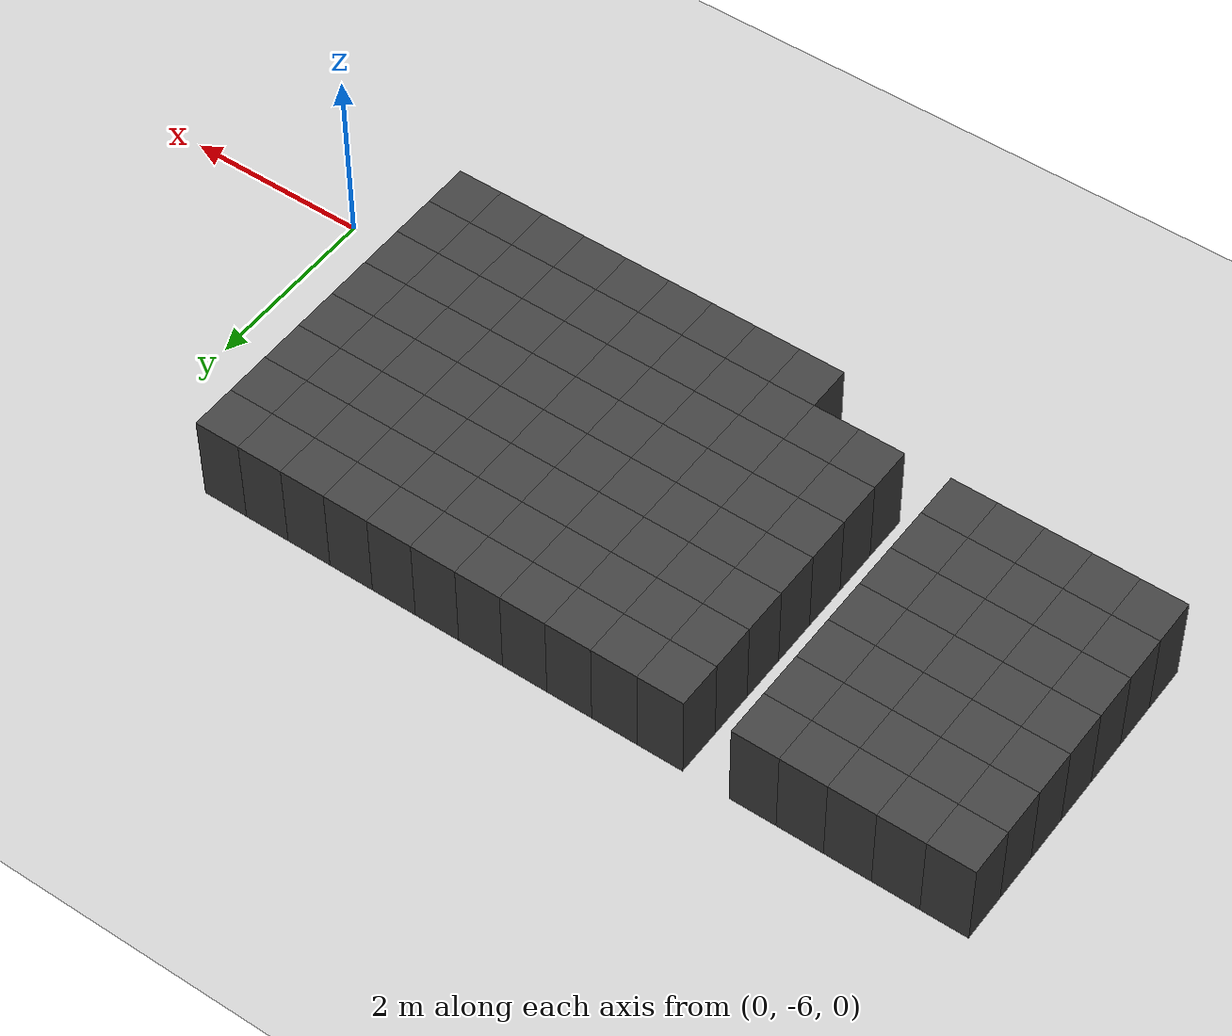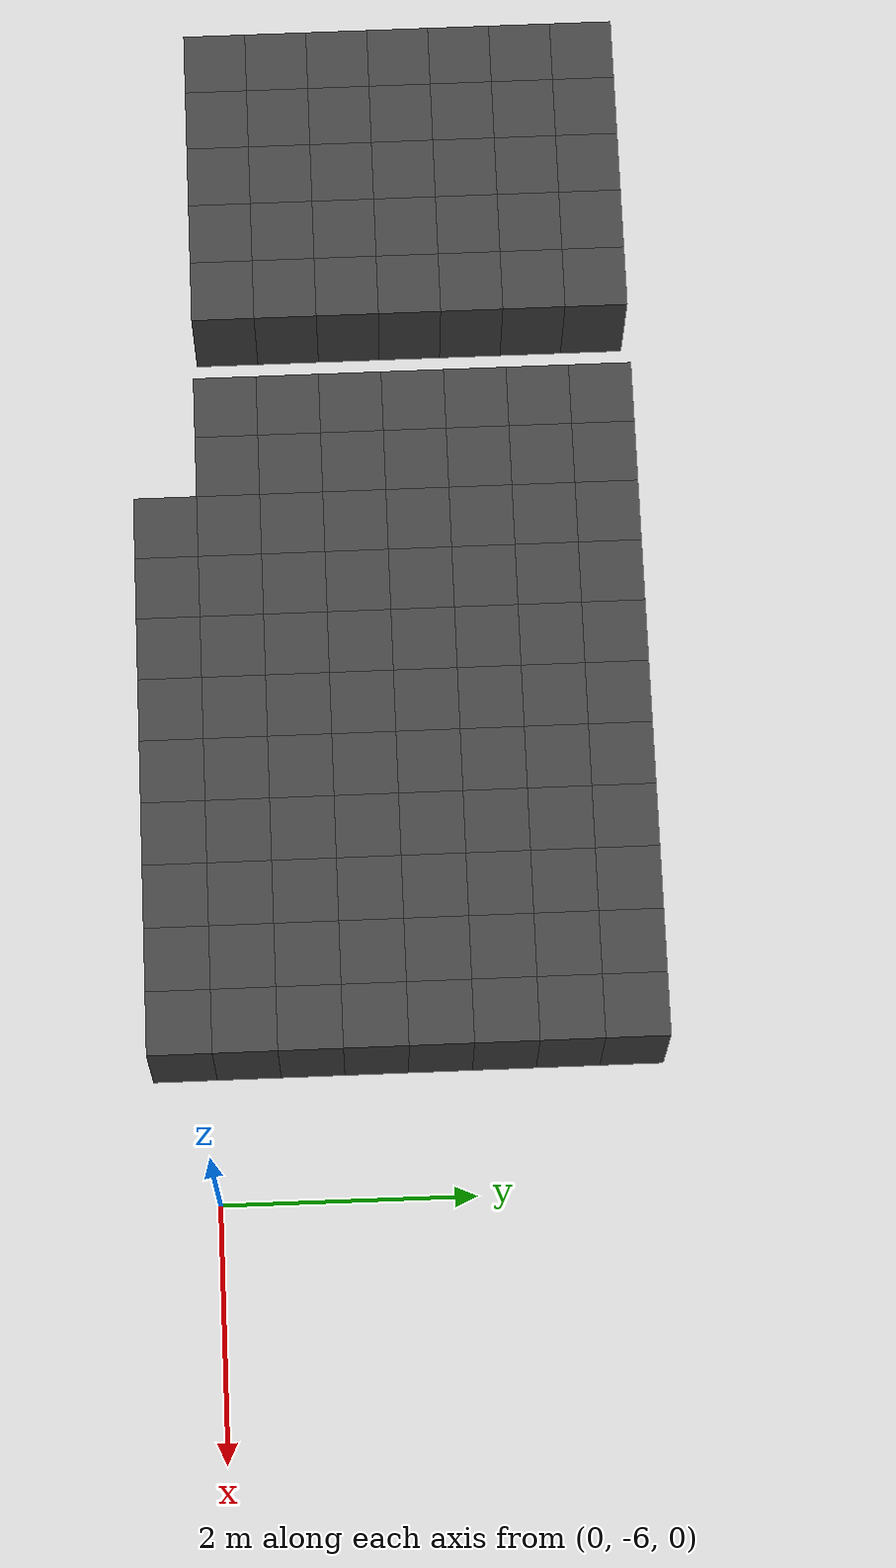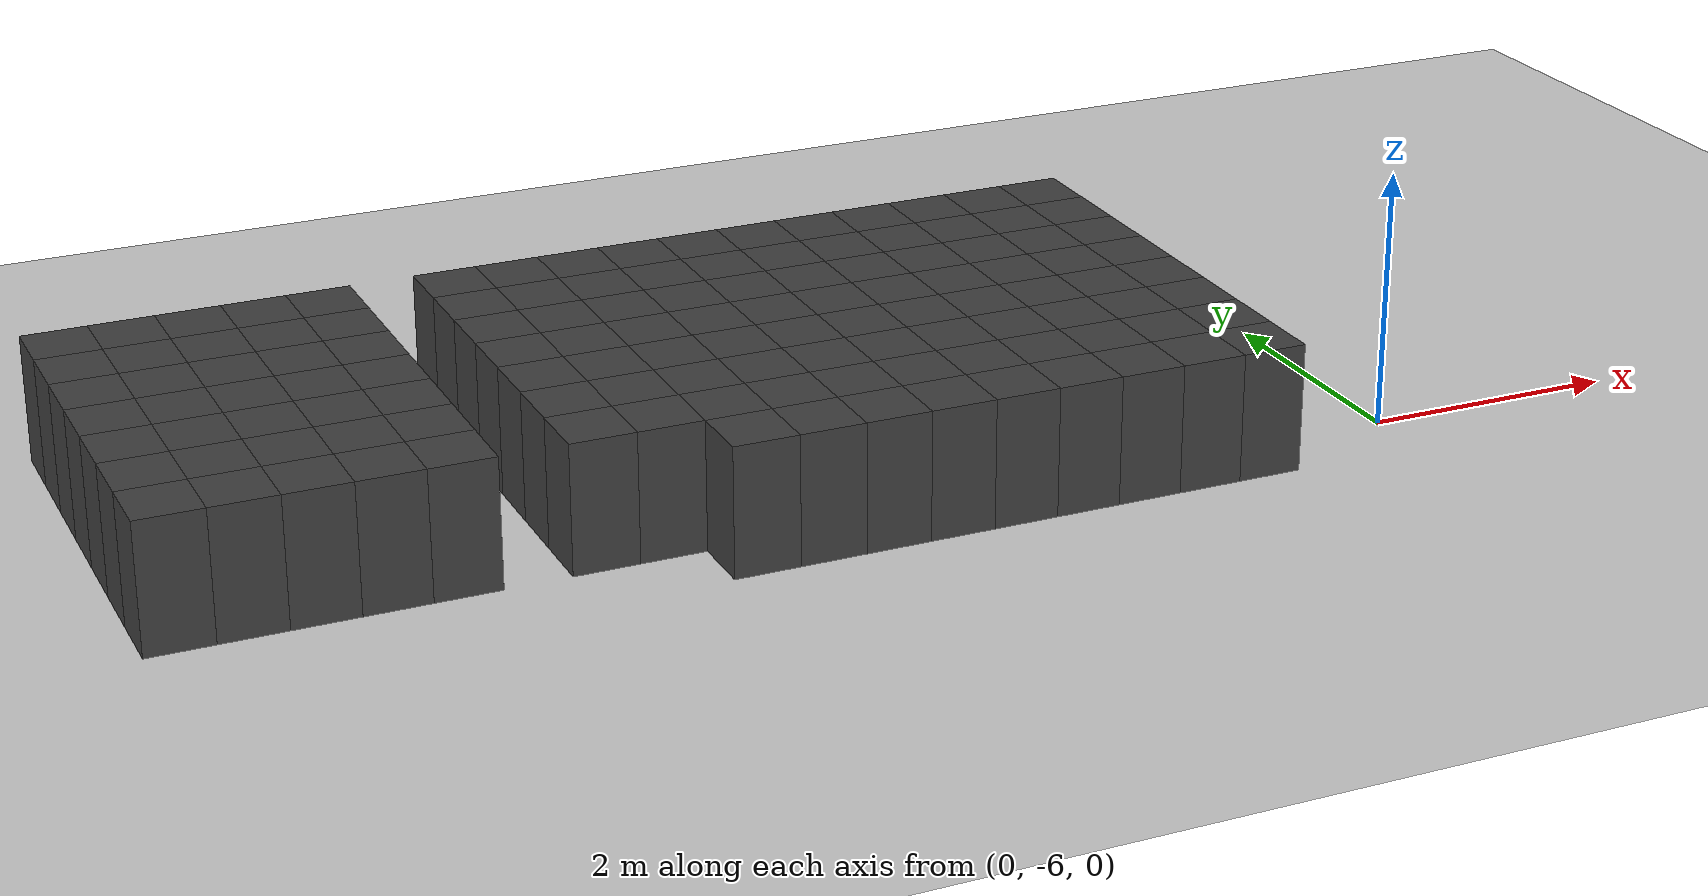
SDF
<sdf version="1.7">
 <world name="map_14706">
  <model name="ground_plane">
   <static>true</static>
   <link name="link">
    <collision name="collision">
     <geometry><plane><normal>0 0 1</normal><size>200 200</size></plane></geometry>
    </collision>
    <visual name="visual">
     <geometry><plane><normal>0 0 1</normal><size>200 200</size></plane></geometry>
     <material><ambient>0.8 0.8 0.8 1</ambient><diffuse>0.8 0.8 0.8 1</diffuse></material>
    </visual>
   </link>
  </model>
  <model name="maze_environment">
   <static>true</static>
   <link name="wall_1031">
    <pose>-9.250 -2.750 0.500 0 0 0</pose>
    <collision name="col"><geometry><box><size>0.5 0.5 1.0</size></box></geometry></collision>
    <visual name="vis">
     <geometry><box><size>0.5 0.5 1.0</size></box></geometry>
     <material><ambient>0.15 0.15 0.15 1</ambient><diffuse>0.25 0.25 0.25 1</diffuse></material>
    </visual>
   </link>
   <link name="wall_1032">
    <pose>-8.750 -2.750 0.500 0 0 0</pose>
    <collision name="col"><geometry><box><size>0.5 0.5 1.0</size></box></geometry></collision>
    <visual name="vis">
     <geometry><box><size>0.5 0.5 1.0</size></box></geometry>
     <material><ambient>0.15 0.15 0.15 1</ambient><diffuse>0.25 0.25 0.25 1</diffuse></material>
    </visual>
   </link>
   <link name="wall_1033">
    <pose>-8.250 -2.750 0.500 0 0 0</pose>
    <collision name="col"><geometry><box><size>0.5 0.5 1.0</size></box></geometry></collision>
    <visual name="vis">
     <geometry><box><size>0.5 0.5 1.0</size></box></geometry>
     <material><ambient>0.15 0.15 0.15 1</ambient><diffuse>0.25 0.25 0.25 1</diffuse></material>
    </visual>
   </link>
   <link name="wall_1034">
    <pose>-7.750 -2.750 0.500 0 0 0</pose>
    <collision name="col"><geometry><box><size>0.5 0.5 1.0</size></box></geometry></collision>
    <visual name="vis">
     <geometry><box><size>0.5 0.5 1.0</size></box></geometry>
     <material><ambient>0.15 0.15 0.15 1</ambient><diffuse>0.25 0.25 0.25 1</diffuse></material>
    </visual>
   </link>
   <link name="wall_1035">
    <pose>-7.250 -2.750 0.500 0 0 0</pose>
    <collision name="col"><geometry><box><size>0.5 0.5 1.0</size></box></geometry></collision>
    <visual name="vis">
     <geometry><box><size>0.5 0.5 1.0</size></box></geometry>
     <material><ambient>0.15 0.15 0.15 1</ambient><diffuse>0.25 0.25 0.25 1</diffuse></material>
    </visual>
   </link>
   <link name="wall_1036">
    <pose>-6.250 -2.750 0.500 0 0 0</pose>
    <collision name="col"><geometry><box><size>0.5 0.5 1.0</size></box></geometry></collision>
    <visual name="vis">
     <geometry><box><size>0.5 0.5 1.0</size></box></geometry>
     <material><ambient>0.15 0.15 0.15 1</ambient><diffuse>0.25 0.25 0.25 1</diffuse></material>
    </visual>
   </link>
   <link name="wall_1037">
    <pose>-5.750 -2.750 0.500 0 0 0</pose>
    <collision name="col"><geometry><box><size>0.5 0.5 1.0</size></box></geometry></collision>
    <visual name="vis">
     <geometry><box><size>0.5 0.5 1.0</size></box></geometry>
     <material><ambient>0.15 0.15 0.15 1</ambient><diffuse>0.25 0.25 0.25 1</diffuse></material>
    </visual>
   </link>
   <link name="wall_1038">
    <pose>-5.250 -2.750 0.500 0 0 0</pose>
    <collision name="col"><geometry><box><size>0.5 0.5 1.0</size></box></geometry></collision>
    <visual name="vis">
     <geometry><box><size>0.5 0.5 1.0</size></box></geometry>
     <material><ambient>0.15 0.15 0.15 1</ambient><diffuse>0.25 0.25 0.25 1</diffuse></material>
    </visual>
   </link>
   <link name="wall_1039">
    <pose>-4.750 -2.750 0.500 0 0 0</pose>
    <collision name="col"><geometry><box><size>0.5 0.5 1.0</size></box></geometry></collision>
    <visual name="vis">
     <geometry><box><size>0.5 0.5 1.0</size></box></geometry>
     <material><ambient>0.15 0.15 0.15 1</ambient><diffuse>0.25 0.25 0.25 1</diffuse></material>
    </visual>
   </link>
   <link name="wall_1040">
    <pose>-4.250 -2.750 0.500 0 0 0</pose>
    <collision name="col"><geometry><box><size>0.5 0.5 1.0</size></box></geometry></collision>
    <visual name="vis">
     <geometry><box><size>0.5 0.5 1.0</size></box></geometry>
     <material><ambient>0.15 0.15 0.15 1</ambient><diffuse>0.25 0.25 0.25 1</diffuse></material>
    </visual>
   </link>
   <link name="wall_1041">
    <pose>-3.750 -2.750 0.500 0 0 0</pose>
    <collision name="col"><geometry><box><size>0.5 0.5 1.0</size></box></geometry></collision>
    <visual name="vis">
     <geometry><box><size>0.5 0.5 1.0</size></box></geometry>
     <material><ambient>0.15 0.15 0.15 1</ambient><diffuse>0.25 0.25 0.25 1</diffuse></material>
    </visual>
   </link>
   <link name="wall_1042">
    <pose>-3.250 -2.750 0.500 0 0 0</pose>
    <collision name="col"><geometry><box><size>0.5 0.5 1.0</size></box></geometry></collision>
    <visual name="vis">
     <geometry><box><size>0.5 0.5 1.0</size></box></geometry>
     <material><ambient>0.15 0.15 0.15 1</ambient><diffuse>0.25 0.25 0.25 1</diffuse></material>
    </visual>
   </link>
   <link name="wall_1043">
    <pose>-2.750 -2.750 0.500 0 0 0</pose>
    <collision name="col"><geometry><box><size>0.5 0.5 1.0</size></box></geometry></collision>
    <visual name="vis">
     <geometry><box><size>0.5 0.5 1.0</size></box></geometry>
     <material><ambient>0.15 0.15 0.15 1</ambient><diffuse>0.25 0.25 0.25 1</diffuse></material>
    </visual>
   </link>
   <link name="wall_1044">
    <pose>-2.250 -2.750 0.500 0 0 0</pose>
    <collision name="col"><geometry><box><size>0.5 0.5 1.0</size></box></geometry></collision>
    <visual name="vis">
     <geometry><box><size>0.5 0.5 1.0</size></box></geometry>
     <material><ambient>0.15 0.15 0.15 1</ambient><diffuse>0.25 0.25 0.25 1</diffuse></material>
    </visual>
   </link>
   <link name="wall_1045">
    <pose>-1.750 -2.750 0.500 0 0 0</pose>
    <collision name="col"><geometry><box><size>0.5 0.5 1.0</size></box></geometry></collision>
    <visual name="vis">
     <geometry><box><size>0.5 0.5 1.0</size></box></geometry>
     <material><ambient>0.15 0.15 0.15 1</ambient><diffuse>0.25 0.25 0.25 1</diffuse></material>
    </visual>
   </link>
   <link name="wall_1046">
    <pose>-1.250 -2.750 0.500 0 0 0</pose>
    <collision name="col"><geometry><box><size>0.5 0.5 1.0</size></box></geometry></collision>
    <visual name="vis">
     <geometry><box><size>0.5 0.5 1.0</size></box></geometry>
     <material><ambient>0.15 0.15 0.15 1</ambient><diffuse>0.25 0.25 0.25 1</diffuse></material>
    </visual>
   </link>
   <link name="wall_1073">
    <pose>-9.250 -3.250 0.500 0 0 0</pose>
    <collision name="col"><geometry><box><size>0.5 0.5 1.0</size></box></geometry></collision>
    <visual name="vis">
     <geometry><box><size>0.5 0.5 1.0</size></box></geometry>
     <material><ambient>0.15 0.15 0.15 1</ambient><diffuse>0.25 0.25 0.25 1</diffuse></material>
    </visual>
   </link>
   <link name="wall_1074">
    <pose>-8.750 -3.250 0.500 0 0 0</pose>
    <collision name="col"><geometry><box><size>0.5 0.5 1.0</size></box></geometry></collision>
    <visual name="vis">
     <geometry><box><size>0.5 0.5 1.0</size></box></geometry>
     <material><ambient>0.15 0.15 0.15 1</ambient><diffuse>0.25 0.25 0.25 1</diffuse></material>
    </visual>
   </link>
   <link name="wall_1075">
    <pose>-8.250 -3.250 0.500 0 0 0</pose>
    <collision name="col"><geometry><box><size>0.5 0.5 1.0</size></box></geometry></collision>
    <visual name="vis">
     <geometry><box><size>0.5 0.5 1.0</size></box></geometry>
     <material><ambient>0.15 0.15 0.15 1</ambient><diffuse>0.25 0.25 0.25 1</diffuse></material>
    </visual>
   </link>
   <link name="wall_1076">
    <pose>-7.750 -3.250 0.500 0 0 0</pose>
    <collision name="col"><geometry><box><size>0.5 0.5 1.0</size></box></geometry></collision>
    <visual name="vis">
     <geometry><box><size>0.5 0.5 1.0</size></box></geometry>
     <material><ambient>0.15 0.15 0.15 1</ambient><diffuse>0.25 0.25 0.25 1</diffuse></material>
    </visual>
   </link>
   <link name="wall_1077">
    <pose>-7.250 -3.250 0.500 0 0 0</pose>
    <collision name="col"><geometry><box><size>0.5 0.5 1.0</size></box></geometry></collision>
    <visual name="vis">
     <geometry><box><size>0.5 0.5 1.0</size></box></geometry>
     <material><ambient>0.15 0.15 0.15 1</ambient><diffuse>0.25 0.25 0.25 1</diffuse></material>
    </visual>
   </link>
   <link name="wall_1078">
    <pose>-6.250 -3.250 0.500 0 0 0</pose>
    <collision name="col"><geometry><box><size>0.5 0.5 1.0</size></box></geometry></collision>
    <visual name="vis">
     <geometry><box><size>0.5 0.5 1.0</size></box></geometry>
     <material><ambient>0.15 0.15 0.15 1</ambient><diffuse>0.25 0.25 0.25 1</diffuse></material>
    </visual>
   </link>
   <link name="wall_1079">
    <pose>-5.750 -3.250 0.500 0 0 0</pose>
    <collision name="col"><geometry><box><size>0.5 0.5 1.0</size></box></geometry></collision>
    <visual name="vis">
     <geometry><box><size>0.5 0.5 1.0</size></box></geometry>
     <material><ambient>0.15 0.15 0.15 1</ambient><diffuse>0.25 0.25 0.25 1</diffuse></material>
    </visual>
   </link>
   <link name="wall_1080">
    <pose>-5.250 -3.250 0.500 0 0 0</pose>
    <collision name="col"><geometry><box><size>0.5 0.5 1.0</size></box></geometry></collision>
    <visual name="vis">
     <geometry><box><size>0.5 0.5 1.0</size></box></geometry>
     <material><ambient>0.15 0.15 0.15 1</ambient><diffuse>0.25 0.25 0.25 1</diffuse></material>
    </visual>
   </link>
   <link name="wall_1081">
    <pose>-4.750 -3.250 0.500 0 0 0</pose>
    <collision name="col"><geometry><box><size>0.5 0.5 1.0</size></box></geometry></collision>
    <visual name="vis">
     <geometry><box><size>0.5 0.5 1.0</size></box></geometry>
     <material><ambient>0.15 0.15 0.15 1</ambient><diffuse>0.25 0.25 0.25 1</diffuse></material>
    </visual>
   </link>
   <link name="wall_1082">
    <pose>-4.250 -3.250 0.500 0 0 0</pose>
    <collision name="col"><geometry><box><size>0.5 0.5 1.0</size></box></geometry></collision>
    <visual name="vis">
     <geometry><box><size>0.5 0.5 1.0</size></box></geometry>
     <material><ambient>0.15 0.15 0.15 1</ambient><diffuse>0.25 0.25 0.25 1</diffuse></material>
    </visual>
   </link>
   <link name="wall_1083">
    <pose>-3.750 -3.250 0.500 0 0 0</pose>
    <collision name="col"><geometry><box><size>0.5 0.5 1.0</size></box></geometry></collision>
    <visual name="vis">
     <geometry><box><size>0.5 0.5 1.0</size></box></geometry>
     <material><ambient>0.15 0.15 0.15 1</ambient><diffuse>0.25 0.25 0.25 1</diffuse></material>
    </visual>
   </link>
   <link name="wall_1084">
    <pose>-3.250 -3.250 0.500 0 0 0</pose>
    <collision name="col"><geometry><box><size>0.5 0.5 1.0</size></box></geometry></collision>
    <visual name="vis">
     <geometry><box><size>0.5 0.5 1.0</size></box></geometry>
     <material><ambient>0.15 0.15 0.15 1</ambient><diffuse>0.25 0.25 0.25 1</diffuse></material>
    </visual>
   </link>
   <link name="wall_1085">
    <pose>-2.750 -3.250 0.500 0 0 0</pose>
    <collision name="col"><geometry><box><size>0.5 0.5 1.0</size></box></geometry></collision>
    <visual name="vis">
     <geometry><box><size>0.5 0.5 1.0</size></box></geometry>
     <material><ambient>0.15 0.15 0.15 1</ambient><diffuse>0.25 0.25 0.25 1</diffuse></material>
    </visual>
   </link>
   <link name="wall_1086">
    <pose>-2.250 -3.250 0.500 0 0 0</pose>
    <collision name="col"><geometry><box><size>0.5 0.5 1.0</size></box></geometry></collision>
    <visual name="vis">
     <geometry><box><size>0.5 0.5 1.0</size></box></geometry>
     <material><ambient>0.15 0.15 0.15 1</ambient><diffuse>0.25 0.25 0.25 1</diffuse></material>
    </visual>
   </link>
   <link name="wall_1087">
    <pose>-1.750 -3.250 0.500 0 0 0</pose>
    <collision name="col"><geometry><box><size>0.5 0.5 1.0</size></box></geometry></collision>
    <visual name="vis">
     <geometry><box><size>0.5 0.5 1.0</size></box></geometry>
     <material><ambient>0.15 0.15 0.15 1</ambient><diffuse>0.25 0.25 0.25 1</diffuse></material>
    </visual>
   </link>
   <link name="wall_1088">
    <pose>-1.250 -3.250 0.500 0 0 0</pose>
    <collision name="col"><geometry><box><size>0.5 0.5 1.0</size></box></geometry></collision>
    <visual name="vis">
     <geometry><box><size>0.5 0.5 1.0</size></box></geometry>
     <material><ambient>0.15 0.15 0.15 1</ambient><diffuse>0.25 0.25 0.25 1</diffuse></material>
    </visual>
   </link>
   <link name="wall_1116">
    <pose>-9.250 -3.750 0.500 0 0 0</pose>
    <collision name="col"><geometry><box><size>0.5 0.5 1.0</size></box></geometry></collision>
    <visual name="vis">
     <geometry><box><size>0.5 0.5 1.0</size></box></geometry>
     <material><ambient>0.15 0.15 0.15 1</ambient><diffuse>0.25 0.25 0.25 1</diffuse></material>
    </visual>
   </link>
   <link name="wall_1117">
    <pose>-8.750 -3.750 0.500 0 0 0</pose>
    <collision name="col"><geometry><box><size>0.5 0.5 1.0</size></box></geometry></collision>
    <visual name="vis">
     <geometry><box><size>0.5 0.5 1.0</size></box></geometry>
     <material><ambient>0.15 0.15 0.15 1</ambient><diffuse>0.25 0.25 0.25 1</diffuse></material>
    </visual>
   </link>
   <link name="wall_1118">
    <pose>-8.250 -3.750 0.500 0 0 0</pose>
    <collision name="col"><geometry><box><size>0.5 0.5 1.0</size></box></geometry></collision>
    <visual name="vis">
     <geometry><box><size>0.5 0.5 1.0</size></box></geometry>
     <material><ambient>0.15 0.15 0.15 1</ambient><diffuse>0.25 0.25 0.25 1</diffuse></material>
    </visual>
   </link>
   <link name="wall_1119">
    <pose>-7.750 -3.750 0.500 0 0 0</pose>
    <collision name="col"><geometry><box><size>0.5 0.5 1.0</size></box></geometry></collision>
    <visual name="vis">
     <geometry><box><size>0.5 0.5 1.0</size></box></geometry>
     <material><ambient>0.15 0.15 0.15 1</ambient><diffuse>0.25 0.25 0.25 1</diffuse></material>
    </visual>
   </link>
   <link name="wall_1120">
    <pose>-7.250 -3.750 0.500 0 0 0</pose>
    <collision name="col"><geometry><box><size>0.5 0.5 1.0</size></box></geometry></collision>
    <visual name="vis">
     <geometry><box><size>0.5 0.5 1.0</size></box></geometry>
     <material><ambient>0.15 0.15 0.15 1</ambient><diffuse>0.25 0.25 0.25 1</diffuse></material>
    </visual>
   </link>
   <link name="wall_1121">
    <pose>-6.250 -3.750 0.500 0 0 0</pose>
    <collision name="col"><geometry><box><size>0.5 0.5 1.0</size></box></geometry></collision>
    <visual name="vis">
     <geometry><box><size>0.5 0.5 1.0</size></box></geometry>
     <material><ambient>0.15 0.15 0.15 1</ambient><diffuse>0.25 0.25 0.25 1</diffuse></material>
    </visual>
   </link>
   <link name="wall_1122">
    <pose>-5.750 -3.750 0.500 0 0 0</pose>
    <collision name="col"><geometry><box><size>0.5 0.5 1.0</size></box></geometry></collision>
    <visual name="vis">
     <geometry><box><size>0.5 0.5 1.0</size></box></geometry>
     <material><ambient>0.15 0.15 0.15 1</ambient><diffuse>0.25 0.25 0.25 1</diffuse></material>
    </visual>
   </link>
   <link name="wall_1123">
    <pose>-5.250 -3.750 0.500 0 0 0</pose>
    <collision name="col"><geometry><box><size>0.5 0.5 1.0</size></box></geometry></collision>
    <visual name="vis">
     <geometry><box><size>0.5 0.5 1.0</size></box></geometry>
     <material><ambient>0.15 0.15 0.15 1</ambient><diffuse>0.25 0.25 0.25 1</diffuse></material>
    </visual>
   </link>
   <link name="wall_1124">
    <pose>-4.750 -3.750 0.500 0 0 0</pose>
    <collision name="col"><geometry><box><size>0.5 0.5 1.0</size></box></geometry></collision>
    <visual name="vis">
     <geometry><box><size>0.5 0.5 1.0</size></box></geometry>
     <material><ambient>0.15 0.15 0.15 1</ambient><diffuse>0.25 0.25 0.25 1</diffuse></material>
    </visual>
   </link>
   <link name="wall_1125">
    <pose>-4.250 -3.750 0.500 0 0 0</pose>
    <collision name="col"><geometry><box><size>0.5 0.5 1.0</size></box></geometry></collision>
    <visual name="vis">
     <geometry><box><size>0.5 0.5 1.0</size></box></geometry>
     <material><ambient>0.15 0.15 0.15 1</ambient><diffuse>0.25 0.25 0.25 1</diffuse></material>
    </visual>
   </link>
   <link name="wall_1126">
    <pose>-3.750 -3.750 0.500 0 0 0</pose>
    <collision name="col"><geometry><box><size>0.5 0.5 1.0</size></box></geometry></collision>
    <visual name="vis">
     <geometry><box><size>0.5 0.5 1.0</size></box></geometry>
     <material><ambient>0.15 0.15 0.15 1</ambient><diffuse>0.25 0.25 0.25 1</diffuse></material>
    </visual>
   </link>
   <link name="wall_1127">
    <pose>-3.250 -3.750 0.500 0 0 0</pose>
    <collision name="col"><geometry><box><size>0.5 0.5 1.0</size></box></geometry></collision>
    <visual name="vis">
     <geometry><box><size>0.5 0.5 1.0</size></box></geometry>
     <material><ambient>0.15 0.15 0.15 1</ambient><diffuse>0.25 0.25 0.25 1</diffuse></material>
    </visual>
   </link>
   <link name="wall_1128">
    <pose>-2.750 -3.750 0.500 0 0 0</pose>
    <collision name="col"><geometry><box><size>0.5 0.5 1.0</size></box></geometry></collision>
    <visual name="vis">
     <geometry><box><size>0.5 0.5 1.0</size></box></geometry>
     <material><ambient>0.15 0.15 0.15 1</ambient><diffuse>0.25 0.25 0.25 1</diffuse></material>
    </visual>
   </link>
   <link name="wall_1129">
    <pose>-2.250 -3.750 0.500 0 0 0</pose>
    <collision name="col"><geometry><box><size>0.5 0.5 1.0</size></box></geometry></collision>
    <visual name="vis">
     <geometry><box><size>0.5 0.5 1.0</size></box></geometry>
     <material><ambient>0.15 0.15 0.15 1</ambient><diffuse>0.25 0.25 0.25 1</diffuse></material>
    </visual>
   </link>
   <link name="wall_1130">
    <pose>-1.750 -3.750 0.500 0 0 0</pose>
    <collision name="col"><geometry><box><size>0.5 0.5 1.0</size></box></geometry></collision>
    <visual name="vis">
     <geometry><box><size>0.5 0.5 1.0</size></box></geometry>
     <material><ambient>0.15 0.15 0.15 1</ambient><diffuse>0.25 0.25 0.25 1</diffuse></material>
    </visual>
   </link>
   <link name="wall_1131">
    <pose>-1.250 -3.750 0.500 0 0 0</pose>
    <collision name="col"><geometry><box><size>0.5 0.5 1.0</size></box></geometry></collision>
    <visual name="vis">
     <geometry><box><size>0.5 0.5 1.0</size></box></geometry>
     <material><ambient>0.15 0.15 0.15 1</ambient><diffuse>0.25 0.25 0.25 1</diffuse></material>
    </visual>
   </link>
   <link name="wall_1159">
    <pose>-9.250 -4.250 0.500 0 0 0</pose>
    <collision name="col"><geometry><box><size>0.5 0.5 1.0</size></box></geometry></collision>
    <visual name="vis">
     <geometry><box><size>0.5 0.5 1.0</size></box></geometry>
     <material><ambient>0.15 0.15 0.15 1</ambient><diffuse>0.25 0.25 0.25 1</diffuse></material>
    </visual>
   </link>
   <link name="wall_1160">
    <pose>-8.750 -4.250 0.500 0 0 0</pose>
    <collision name="col"><geometry><box><size>0.5 0.5 1.0</size></box></geometry></collision>
    <visual name="vis">
     <geometry><box><size>0.5 0.5 1.0</size></box></geometry>
     <material><ambient>0.15 0.15 0.15 1</ambient><diffuse>0.25 0.25 0.25 1</diffuse></material>
    </visual>
   </link>
   <link name="wall_1161">
    <pose>-8.250 -4.250 0.500 0 0 0</pose>
    <collision name="col"><geometry><box><size>0.5 0.5 1.0</size></box></geometry></collision>
    <visual name="vis">
     <geometry><box><size>0.5 0.5 1.0</size></box></geometry>
     <material><ambient>0.15 0.15 0.15 1</ambient><diffuse>0.25 0.25 0.25 1</diffuse></material>
    </visual>
   </link>
   <link name="wall_1162">
    <pose>-7.750 -4.250 0.500 0 0 0</pose>
    <collision name="col"><geometry><box><size>0.5 0.5 1.0</size></box></geometry></collision>
    <visual name="vis">
     <geometry><box><size>0.5 0.5 1.0</size></box></geometry>
     <material><ambient>0.15 0.15 0.15 1</ambient><diffuse>0.25 0.25 0.25 1</diffuse></material>
    </visual>
   </link>
   <link name="wall_1163">
    <pose>-7.250 -4.250 0.500 0 0 0</pose>
    <collision name="col"><geometry><box><size>0.5 0.5 1.0</size></box></geometry></collision>
    <visual name="vis">
     <geometry><box><size>0.5 0.5 1.0</size></box></geometry>
     <material><ambient>0.15 0.15 0.15 1</ambient><diffuse>0.25 0.25 0.25 1</diffuse></material>
    </visual>
   </link>
   <link name="wall_1164">
    <pose>-6.250 -4.250 0.500 0 0 0</pose>
    <collision name="col"><geometry><box><size>0.5 0.5 1.0</size></box></geometry></collision>
    <visual name="vis">
     <geometry><box><size>0.5 0.5 1.0</size></box></geometry>
     <material><ambient>0.15 0.15 0.15 1</ambient><diffuse>0.25 0.25 0.25 1</diffuse></material>
    </visual>
   </link>
   <link name="wall_1165">
    <pose>-5.750 -4.250 0.500 0 0 0</pose>
    <collision name="col"><geometry><box><size>0.5 0.5 1.0</size></box></geometry></collision>
    <visual name="vis">
     <geometry><box><size>0.5 0.5 1.0</size></box></geometry>
     <material><ambient>0.15 0.15 0.15 1</ambient><diffuse>0.25 0.25 0.25 1</diffuse></material>
    </visual>
   </link>
   <link name="wall_1166">
    <pose>-5.250 -4.250 0.500 0 0 0</pose>
    <collision name="col"><geometry><box><size>0.5 0.5 1.0</size></box></geometry></collision>
    <visual name="vis">
     <geometry><box><size>0.5 0.5 1.0</size></box></geometry>
     <material><ambient>0.15 0.15 0.15 1</ambient><diffuse>0.25 0.25 0.25 1</diffuse></material>
    </visual>
   </link>
   <link name="wall_1167">
    <pose>-4.750 -4.250 0.500 0 0 0</pose>
    <collision name="col"><geometry><box><size>0.5 0.5 1.0</size></box></geometry></collision>
    <visual name="vis">
     <geometry><box><size>0.5 0.5 1.0</size></box></geometry>
     <material><ambient>0.15 0.15 0.15 1</ambient><diffuse>0.25 0.25 0.25 1</diffuse></material>
    </visual>
   </link>
   <link name="wall_1168">
    <pose>-4.250 -4.250 0.500 0 0 0</pose>
    <collision name="col"><geometry><box><size>0.5 0.5 1.0</size></box></geometry></collision>
    <visual name="vis">
     <geometry><box><size>0.5 0.5 1.0</size></box></geometry>
     <material><ambient>0.15 0.15 0.15 1</ambient><diffuse>0.25 0.25 0.25 1</diffuse></material>
    </visual>
   </link>
   <link name="wall_1169">
    <pose>-3.750 -4.250 0.500 0 0 0</pose>
    <collision name="col"><geometry><box><size>0.5 0.5 1.0</size></box></geometry></collision>
    <visual name="vis">
     <geometry><box><size>0.5 0.5 1.0</size></box></geometry>
     <material><ambient>0.15 0.15 0.15 1</ambient><diffuse>0.25 0.25 0.25 1</diffuse></material>
    </visual>
   </link>
   <link name="wall_1170">
    <pose>-3.250 -4.250 0.500 0 0 0</pose>
    <collision name="col"><geometry><box><size>0.5 0.5 1.0</size></box></geometry></collision>
    <visual name="vis">
     <geometry><box><size>0.5 0.5 1.0</size></box></geometry>
     <material><ambient>0.15 0.15 0.15 1</ambient><diffuse>0.25 0.25 0.25 1</diffuse></material>
    </visual>
   </link>
   <link name="wall_1171">
    <pose>-2.750 -4.250 0.500 0 0 0</pose>
    <collision name="col"><geometry><box><size>0.5 0.5 1.0</size></box></geometry></collision>
    <visual name="vis">
     <geometry><box><size>0.5 0.5 1.0</size></box></geometry>
     <material><ambient>0.15 0.15 0.15 1</ambient><diffuse>0.25 0.25 0.25 1</diffuse></material>
    </visual>
   </link>
   <link name="wall_1172">
    <pose>-2.250 -4.250 0.500 0 0 0</pose>
    <collision name="col"><geometry><box><size>0.5 0.5 1.0</size></box></geometry></collision>
    <visual name="vis">
     <geometry><box><size>0.5 0.5 1.0</size></box></geometry>
     <material><ambient>0.15 0.15 0.15 1</ambient><diffuse>0.25 0.25 0.25 1</diffuse></material>
    </visual>
   </link>
   <link name="wall_1173">
    <pose>-1.750 -4.250 0.500 0 0 0</pose>
    <collision name="col"><geometry><box><size>0.5 0.5 1.0</size></box></geometry></collision>
    <visual name="vis">
     <geometry><box><size>0.5 0.5 1.0</size></box></geometry>
     <material><ambient>0.15 0.15 0.15 1</ambient><diffuse>0.25 0.25 0.25 1</diffuse></material>
    </visual>
   </link>
   <link name="wall_1174">
    <pose>-1.250 -4.250 0.500 0 0 0</pose>
    <collision name="col"><geometry><box><size>0.5 0.5 1.0</size></box></geometry></collision>
    <visual name="vis">
     <geometry><box><size>0.5 0.5 1.0</size></box></geometry>
     <material><ambient>0.15 0.15 0.15 1</ambient><diffuse>0.25 0.25 0.25 1</diffuse></material>
    </visual>
   </link>
   <link name="wall_1202">
    <pose>-9.250 -4.750 0.500 0 0 0</pose>
    <collision name="col"><geometry><box><size>0.5 0.5 1.0</size></box></geometry></collision>
    <visual name="vis">
     <geometry><box><size>0.5 0.5 1.0</size></box></geometry>
     <material><ambient>0.15 0.15 0.15 1</ambient><diffuse>0.25 0.25 0.25 1</diffuse></material>
    </visual>
   </link>
   <link name="wall_1203">
    <pose>-8.750 -4.750 0.500 0 0 0</pose>
    <collision name="col"><geometry><box><size>0.5 0.5 1.0</size></box></geometry></collision>
    <visual name="vis">
     <geometry><box><size>0.5 0.5 1.0</size></box></geometry>
     <material><ambient>0.15 0.15 0.15 1</ambient><diffuse>0.25 0.25 0.25 1</diffuse></material>
    </visual>
   </link>
   <link name="wall_1204">
    <pose>-8.250 -4.750 0.500 0 0 0</pose>
    <collision name="col"><geometry><box><size>0.5 0.5 1.0</size></box></geometry></collision>
    <visual name="vis">
     <geometry><box><size>0.5 0.5 1.0</size></box></geometry>
     <material><ambient>0.15 0.15 0.15 1</ambient><diffuse>0.25 0.25 0.25 1</diffuse></material>
    </visual>
   </link>
   <link name="wall_1205">
    <pose>-7.750 -4.750 0.500 0 0 0</pose>
    <collision name="col"><geometry><box><size>0.5 0.5 1.0</size></box></geometry></collision>
    <visual name="vis">
     <geometry><box><size>0.5 0.5 1.0</size></box></geometry>
     <material><ambient>0.15 0.15 0.15 1</ambient><diffuse>0.25 0.25 0.25 1</diffuse></material>
    </visual>
   </link>
   <link name="wall_1206">
    <pose>-7.250 -4.750 0.500 0 0 0</pose>
    <collision name="col"><geometry><box><size>0.5 0.5 1.0</size></box></geometry></collision>
    <visual name="vis">
     <geometry><box><size>0.5 0.5 1.0</size></box></geometry>
     <material><ambient>0.15 0.15 0.15 1</ambient><diffuse>0.25 0.25 0.25 1</diffuse></material>
    </visual>
   </link>
   <link name="wall_1207">
    <pose>-6.250 -4.750 0.500 0 0 0</pose>
    <collision name="col"><geometry><box><size>0.5 0.5 1.0</size></box></geometry></collision>
    <visual name="vis">
     <geometry><box><size>0.5 0.5 1.0</size></box></geometry>
     <material><ambient>0.15 0.15 0.15 1</ambient><diffuse>0.25 0.25 0.25 1</diffuse></material>
    </visual>
   </link>
   <link name="wall_1208">
    <pose>-5.750 -4.750 0.500 0 0 0</pose>
    <collision name="col"><geometry><box><size>0.5 0.5 1.0</size></box></geometry></collision>
    <visual name="vis">
     <geometry><box><size>0.5 0.5 1.0</size></box></geometry>
     <material><ambient>0.15 0.15 0.15 1</ambient><diffuse>0.25 0.25 0.25 1</diffuse></material>
    </visual>
   </link>
   <link name="wall_1209">
    <pose>-5.250 -4.750 0.500 0 0 0</pose>
    <collision name="col"><geometry><box><size>0.5 0.5 1.0</size></box></geometry></collision>
    <visual name="vis">
     <geometry><box><size>0.5 0.5 1.0</size></box></geometry>
     <material><ambient>0.15 0.15 0.15 1</ambient><diffuse>0.25 0.25 0.25 1</diffuse></material>
    </visual>
   </link>
   <link name="wall_1210">
    <pose>-4.750 -4.750 0.500 0 0 0</pose>
    <collision name="col"><geometry><box><size>0.5 0.5 1.0</size></box></geometry></collision>
    <visual name="vis">
     <geometry><box><size>0.5 0.5 1.0</size></box></geometry>
     <material><ambient>0.15 0.15 0.15 1</ambient><diffuse>0.25 0.25 0.25 1</diffuse></material>
    </visual>
   </link>
   <link name="wall_1211">
    <pose>-4.250 -4.750 0.500 0 0 0</pose>
    <collision name="col"><geometry><box><size>0.5 0.5 1.0</size></box></geometry></collision>
    <visual name="vis">
     <geometry><box><size>0.5 0.5 1.0</size></box></geometry>
     <material><ambient>0.15 0.15 0.15 1</ambient><diffuse>0.25 0.25 0.25 1</diffuse></material>
    </visual>
   </link>
   <link name="wall_1212">
    <pose>-3.750 -4.750 0.500 0 0 0</pose>
    <collision name="col"><geometry><box><size>0.5 0.5 1.0</size></box></geometry></collision>
    <visual name="vis">
     <geometry><box><size>0.5 0.5 1.0</size></box></geometry>
     <material><ambient>0.15 0.15 0.15 1</ambient><diffuse>0.25 0.25 0.25 1</diffuse></material>
    </visual>
   </link>
   <link name="wall_1213">
    <pose>-3.250 -4.750 0.500 0 0 0</pose>
    <collision name="col"><geometry><box><size>0.5 0.5 1.0</size></box></geometry></collision>
    <visual name="vis">
     <geometry><box><size>0.5 0.5 1.0</size></box></geometry>
     <material><ambient>0.15 0.15 0.15 1</ambient><diffuse>0.25 0.25 0.25 1</diffuse></material>
    </visual>
   </link>
   <link name="wall_1214">
    <pose>-2.750 -4.750 0.500 0 0 0</pose>
    <collision name="col"><geometry><box><size>0.5 0.5 1.0</size></box></geometry></collision>
    <visual name="vis">
     <geometry><box><size>0.5 0.5 1.0</size></box></geometry>
     <material><ambient>0.15 0.15 0.15 1</ambient><diffuse>0.25 0.25 0.25 1</diffuse></material>
    </visual>
   </link>
   <link name="wall_1215">
    <pose>-2.250 -4.750 0.500 0 0 0</pose>
    <collision name="col"><geometry><box><size>0.5 0.5 1.0</size></box></geometry></collision>
    <visual name="vis">
     <geometry><box><size>0.5 0.5 1.0</size></box></geometry>
     <material><ambient>0.15 0.15 0.15 1</ambient><diffuse>0.25 0.25 0.25 1</diffuse></material>
    </visual>
   </link>
   <link name="wall_1216">
    <pose>-1.750 -4.750 0.500 0 0 0</pose>
    <collision name="col"><geometry><box><size>0.5 0.5 1.0</size></box></geometry></collision>
    <visual name="vis">
     <geometry><box><size>0.5 0.5 1.0</size></box></geometry>
     <material><ambient>0.15 0.15 0.15 1</ambient><diffuse>0.25 0.25 0.25 1</diffuse></material>
    </visual>
   </link>
   <link name="wall_1217">
    <pose>-1.250 -4.750 0.500 0 0 0</pose>
    <collision name="col"><geometry><box><size>0.5 0.5 1.0</size></box></geometry></collision>
    <visual name="vis">
     <geometry><box><size>0.5 0.5 1.0</size></box></geometry>
     <material><ambient>0.15 0.15 0.15 1</ambient><diffuse>0.25 0.25 0.25 1</diffuse></material>
    </visual>
   </link>
   <link name="wall_1238">
    <pose>-9.250 -5.250 0.500 0 0 0</pose>
    <collision name="col"><geometry><box><size>0.5 0.5 1.0</size></box></geometry></collision>
    <visual name="vis">
     <geometry><box><size>0.5 0.5 1.0</size></box></geometry>
     <material><ambient>0.15 0.15 0.15 1</ambient><diffuse>0.25 0.25 0.25 1</diffuse></material>
    </visual>
   </link>
   <link name="wall_1239">
    <pose>-8.750 -5.250 0.500 0 0 0</pose>
    <collision name="col"><geometry><box><size>0.5 0.5 1.0</size></box></geometry></collision>
    <visual name="vis">
     <geometry><box><size>0.5 0.5 1.0</size></box></geometry>
     <material><ambient>0.15 0.15 0.15 1</ambient><diffuse>0.25 0.25 0.25 1</diffuse></material>
    </visual>
   </link>
   <link name="wall_1240">
    <pose>-8.250 -5.250 0.500 0 0 0</pose>
    <collision name="col"><geometry><box><size>0.5 0.5 1.0</size></box></geometry></collision>
    <visual name="vis">
     <geometry><box><size>0.5 0.5 1.0</size></box></geometry>
     <material><ambient>0.15 0.15 0.15 1</ambient><diffuse>0.25 0.25 0.25 1</diffuse></material>
    </visual>
   </link>
   <link name="wall_1241">
    <pose>-7.750 -5.250 0.500 0 0 0</pose>
    <collision name="col"><geometry><box><size>0.5 0.5 1.0</size></box></geometry></collision>
    <visual name="vis">
     <geometry><box><size>0.5 0.5 1.0</size></box></geometry>
     <material><ambient>0.15 0.15 0.15 1</ambient><diffuse>0.25 0.25 0.25 1</diffuse></material>
    </visual>
   </link>
   <link name="wall_1242">
    <pose>-7.250 -5.250 0.500 0 0 0</pose>
    <collision name="col"><geometry><box><size>0.5 0.5 1.0</size></box></geometry></collision>
    <visual name="vis">
     <geometry><box><size>0.5 0.5 1.0</size></box></geometry>
     <material><ambient>0.15 0.15 0.15 1</ambient><diffuse>0.25 0.25 0.25 1</diffuse></material>
    </visual>
   </link>
   <link name="wall_1243">
    <pose>-6.250 -5.250 0.500 0 0 0</pose>
    <collision name="col"><geometry><box><size>0.5 0.5 1.0</size></box></geometry></collision>
    <visual name="vis">
     <geometry><box><size>0.5 0.5 1.0</size></box></geometry>
     <material><ambient>0.15 0.15 0.15 1</ambient><diffuse>0.25 0.25 0.25 1</diffuse></material>
    </visual>
   </link>
   <link name="wall_1244">
    <pose>-5.750 -5.250 0.500 0 0 0</pose>
    <collision name="col"><geometry><box><size>0.5 0.5 1.0</size></box></geometry></collision>
    <visual name="vis">
     <geometry><box><size>0.5 0.5 1.0</size></box></geometry>
     <material><ambient>0.15 0.15 0.15 1</ambient><diffuse>0.25 0.25 0.25 1</diffuse></material>
    </visual>
   </link>
   <link name="wall_1245">
    <pose>-5.250 -5.250 0.500 0 0 0</pose>
    <collision name="col"><geometry><box><size>0.5 0.5 1.0</size></box></geometry></collision>
    <visual name="vis">
     <geometry><box><size>0.5 0.5 1.0</size></box></geometry>
     <material><ambient>0.15 0.15 0.15 1</ambient><diffuse>0.25 0.25 0.25 1</diffuse></material>
    </visual>
   </link>
   <link name="wall_1246">
    <pose>-4.750 -5.250 0.500 0 0 0</pose>
    <collision name="col"><geometry><box><size>0.5 0.5 1.0</size></box></geometry></collision>
    <visual name="vis">
     <geometry><box><size>0.5 0.5 1.0</size></box></geometry>
     <material><ambient>0.15 0.15 0.15 1</ambient><diffuse>0.25 0.25 0.25 1</diffuse></material>
    </visual>
   </link>
   <link name="wall_1247">
    <pose>-4.250 -5.250 0.500 0 0 0</pose>
    <collision name="col"><geometry><box><size>0.5 0.5 1.0</size></box></geometry></collision>
    <visual name="vis">
     <geometry><box><size>0.5 0.5 1.0</size></box></geometry>
     <material><ambient>0.15 0.15 0.15 1</ambient><diffuse>0.25 0.25 0.25 1</diffuse></material>
    </visual>
   </link>
   <link name="wall_1248">
    <pose>-3.750 -5.250 0.500 0 0 0</pose>
    <collision name="col"><geometry><box><size>0.5 0.5 1.0</size></box></geometry></collision>
    <visual name="vis">
     <geometry><box><size>0.5 0.5 1.0</size></box></geometry>
     <material><ambient>0.15 0.15 0.15 1</ambient><diffuse>0.25 0.25 0.25 1</diffuse></material>
    </visual>
   </link>
   <link name="wall_1249">
    <pose>-3.250 -5.250 0.500 0 0 0</pose>
    <collision name="col"><geometry><box><size>0.5 0.5 1.0</size></box></geometry></collision>
    <visual name="vis">
     <geometry><box><size>0.5 0.5 1.0</size></box></geometry>
     <material><ambient>0.15 0.15 0.15 1</ambient><diffuse>0.25 0.25 0.25 1</diffuse></material>
    </visual>
   </link>
   <link name="wall_1250">
    <pose>-2.750 -5.250 0.500 0 0 0</pose>
    <collision name="col"><geometry><box><size>0.5 0.5 1.0</size></box></geometry></collision>
    <visual name="vis">
     <geometry><box><size>0.5 0.5 1.0</size></box></geometry>
     <material><ambient>0.15 0.15 0.15 1</ambient><diffuse>0.25 0.25 0.25 1</diffuse></material>
    </visual>
   </link>
   <link name="wall_1251">
    <pose>-2.250 -5.250 0.500 0 0 0</pose>
    <collision name="col"><geometry><box><size>0.5 0.5 1.0</size></box></geometry></collision>
    <visual name="vis">
     <geometry><box><size>0.5 0.5 1.0</size></box></geometry>
     <material><ambient>0.15 0.15 0.15 1</ambient><diffuse>0.25 0.25 0.25 1</diffuse></material>
    </visual>
   </link>
   <link name="wall_1252">
    <pose>-1.750 -5.250 0.500 0 0 0</pose>
    <collision name="col"><geometry><box><size>0.5 0.5 1.0</size></box></geometry></collision>
    <visual name="vis">
     <geometry><box><size>0.5 0.5 1.0</size></box></geometry>
     <material><ambient>0.15 0.15 0.15 1</ambient><diffuse>0.25 0.25 0.25 1</diffuse></material>
    </visual>
   </link>
   <link name="wall_1253">
    <pose>-1.250 -5.250 0.500 0 0 0</pose>
    <collision name="col"><geometry><box><size>0.5 0.5 1.0</size></box></geometry></collision>
    <visual name="vis">
     <geometry><box><size>0.5 0.5 1.0</size></box></geometry>
     <material><ambient>0.15 0.15 0.15 1</ambient><diffuse>0.25 0.25 0.25 1</diffuse></material>
    </visual>
   </link>
   <link name="wall_1275">
    <pose>-9.250 -5.750 0.500 0 0 0</pose>
    <collision name="col"><geometry><box><size>0.5 0.5 1.0</size></box></geometry></collision>
    <visual name="vis">
     <geometry><box><size>0.5 0.5 1.0</size></box></geometry>
     <material><ambient>0.15 0.15 0.15 1</ambient><diffuse>0.25 0.25 0.25 1</diffuse></material>
    </visual>
   </link>
   <link name="wall_1276">
    <pose>-8.750 -5.750 0.500 0 0 0</pose>
    <collision name="col"><geometry><box><size>0.5 0.5 1.0</size></box></geometry></collision>
    <visual name="vis">
     <geometry><box><size>0.5 0.5 1.0</size></box></geometry>
     <material><ambient>0.15 0.15 0.15 1</ambient><diffuse>0.25 0.25 0.25 1</diffuse></material>
    </visual>
   </link>
   <link name="wall_1277">
    <pose>-8.250 -5.750 0.500 0 0 0</pose>
    <collision name="col"><geometry><box><size>0.5 0.5 1.0</size></box></geometry></collision>
    <visual name="vis">
     <geometry><box><size>0.5 0.5 1.0</size></box></geometry>
     <material><ambient>0.15 0.15 0.15 1</ambient><diffuse>0.25 0.25 0.25 1</diffuse></material>
    </visual>
   </link>
   <link name="wall_1278">
    <pose>-7.750 -5.750 0.500 0 0 0</pose>
    <collision name="col"><geometry><box><size>0.5 0.5 1.0</size></box></geometry></collision>
    <visual name="vis">
     <geometry><box><size>0.5 0.5 1.0</size></box></geometry>
     <material><ambient>0.15 0.15 0.15 1</ambient><diffuse>0.25 0.25 0.25 1</diffuse></material>
    </visual>
   </link>
   <link name="wall_1279">
    <pose>-7.250 -5.750 0.500 0 0 0</pose>
    <collision name="col"><geometry><box><size>0.5 0.5 1.0</size></box></geometry></collision>
    <visual name="vis">
     <geometry><box><size>0.5 0.5 1.0</size></box></geometry>
     <material><ambient>0.15 0.15 0.15 1</ambient><diffuse>0.25 0.25 0.25 1</diffuse></material>
    </visual>
   </link>
   <link name="wall_1280">
    <pose>-6.250 -5.750 0.500 0 0 0</pose>
    <collision name="col"><geometry><box><size>0.5 0.5 1.0</size></box></geometry></collision>
    <visual name="vis">
     <geometry><box><size>0.5 0.5 1.0</size></box></geometry>
     <material><ambient>0.15 0.15 0.15 1</ambient><diffuse>0.25 0.25 0.25 1</diffuse></material>
    </visual>
   </link>
   <link name="wall_1281">
    <pose>-5.750 -5.750 0.500 0 0 0</pose>
    <collision name="col"><geometry><box><size>0.5 0.5 1.0</size></box></geometry></collision>
    <visual name="vis">
     <geometry><box><size>0.5 0.5 1.0</size></box></geometry>
     <material><ambient>0.15 0.15 0.15 1</ambient><diffuse>0.25 0.25 0.25 1</diffuse></material>
    </visual>
   </link>
   <link name="wall_1282">
    <pose>-5.250 -5.750 0.500 0 0 0</pose>
    <collision name="col"><geometry><box><size>0.5 0.5 1.0</size></box></geometry></collision>
    <visual name="vis">
     <geometry><box><size>0.5 0.5 1.0</size></box></geometry>
     <material><ambient>0.15 0.15 0.15 1</ambient><diffuse>0.25 0.25 0.25 1</diffuse></material>
    </visual>
   </link>
   <link name="wall_1283">
    <pose>-4.750 -5.750 0.500 0 0 0</pose>
    <collision name="col"><geometry><box><size>0.5 0.5 1.0</size></box></geometry></collision>
    <visual name="vis">
     <geometry><box><size>0.5 0.5 1.0</size></box></geometry>
     <material><ambient>0.15 0.15 0.15 1</ambient><diffuse>0.25 0.25 0.25 1</diffuse></material>
    </visual>
   </link>
   <link name="wall_1284">
    <pose>-4.250 -5.750 0.500 0 0 0</pose>
    <collision name="col"><geometry><box><size>0.5 0.5 1.0</size></box></geometry></collision>
    <visual name="vis">
     <geometry><box><size>0.5 0.5 1.0</size></box></geometry>
     <material><ambient>0.15 0.15 0.15 1</ambient><diffuse>0.25 0.25 0.25 1</diffuse></material>
    </visual>
   </link>
   <link name="wall_1285">
    <pose>-3.750 -5.750 0.500 0 0 0</pose>
    <collision name="col"><geometry><box><size>0.5 0.5 1.0</size></box></geometry></collision>
    <visual name="vis">
     <geometry><box><size>0.5 0.5 1.0</size></box></geometry>
     <material><ambient>0.15 0.15 0.15 1</ambient><diffuse>0.25 0.25 0.25 1</diffuse></material>
    </visual>
   </link>
   <link name="wall_1286">
    <pose>-3.250 -5.750 0.500 0 0 0</pose>
    <collision name="col"><geometry><box><size>0.5 0.5 1.0</size></box></geometry></collision>
    <visual name="vis">
     <geometry><box><size>0.5 0.5 1.0</size></box></geometry>
     <material><ambient>0.15 0.15 0.15 1</ambient><diffuse>0.25 0.25 0.25 1</diffuse></material>
    </visual>
   </link>
   <link name="wall_1287">
    <pose>-2.750 -5.750 0.500 0 0 0</pose>
    <collision name="col"><geometry><box><size>0.5 0.5 1.0</size></box></geometry></collision>
    <visual name="vis">
     <geometry><box><size>0.5 0.5 1.0</size></box></geometry>
     <material><ambient>0.15 0.15 0.15 1</ambient><diffuse>0.25 0.25 0.25 1</diffuse></material>
    </visual>
   </link>
   <link name="wall_1288">
    <pose>-2.250 -5.750 0.500 0 0 0</pose>
    <collision name="col"><geometry><box><size>0.5 0.5 1.0</size></box></geometry></collision>
    <visual name="vis">
     <geometry><box><size>0.5 0.5 1.0</size></box></geometry>
     <material><ambient>0.15 0.15 0.15 1</ambient><diffuse>0.25 0.25 0.25 1</diffuse></material>
    </visual>
   </link>
   <link name="wall_1289">
    <pose>-1.750 -5.750 0.500 0 0 0</pose>
    <collision name="col"><geometry><box><size>0.5 0.5 1.0</size></box></geometry></collision>
    <visual name="vis">
     <geometry><box><size>0.5 0.5 1.0</size></box></geometry>
     <material><ambient>0.15 0.15 0.15 1</ambient><diffuse>0.25 0.25 0.25 1</diffuse></material>
    </visual>
   </link>
   <link name="wall_1290">
    <pose>-1.250 -5.750 0.500 0 0 0</pose>
    <collision name="col"><geometry><box><size>0.5 0.5 1.0</size></box></geometry></collision>
    <visual name="vis">
     <geometry><box><size>0.5 0.5 1.0</size></box></geometry>
     <material><ambient>0.15 0.15 0.15 1</ambient><diffuse>0.25 0.25 0.25 1</diffuse></material>
    </visual>
   </link>
   <link name="wall_1319">
    <pose>-5.250 -6.250 0.500 0 0 0</pose>
    <collision name="col"><geometry><box><size>0.5 0.5 1.0</size></box></geometry></collision>
    <visual name="vis">
     <geometry><box><size>0.5 0.5 1.0</size></box></geometry>
     <material><ambient>0.15 0.15 0.15 1</ambient><diffuse>0.25 0.25 0.25 1</diffuse></material>
    </visual>
   </link>
   <link name="wall_1320">
    <pose>-4.750 -6.250 0.500 0 0 0</pose>
    <collision name="col"><geometry><box><size>0.5 0.5 1.0</size></box></geometry></collision>
    <visual name="vis">
     <geometry><box><size>0.5 0.5 1.0</size></box></geometry>
     <material><ambient>0.15 0.15 0.15 1</ambient><diffuse>0.25 0.25 0.25 1</diffuse></material>
    </visual>
   </link>
   <link name="wall_1321">
    <pose>-4.250 -6.250 0.500 0 0 0</pose>
    <collision name="col"><geometry><box><size>0.5 0.5 1.0</size></box></geometry></collision>
    <visual name="vis">
     <geometry><box><size>0.5 0.5 1.0</size></box></geometry>
     <material><ambient>0.15 0.15 0.15 1</ambient><diffuse>0.25 0.25 0.25 1</diffuse></material>
    </visual>
   </link>
   <link name="wall_1322">
    <pose>-3.750 -6.250 0.500 0 0 0</pose>
    <collision name="col"><geometry><box><size>0.5 0.5 1.0</size></box></geometry></collision>
    <visual name="vis">
     <geometry><box><size>0.5 0.5 1.0</size></box></geometry>
     <material><ambient>0.15 0.15 0.15 1</ambient><diffuse>0.25 0.25 0.25 1</diffuse></material>
    </visual>
   </link>
   <link name="wall_1323">
    <pose>-3.250 -6.250 0.500 0 0 0</pose>
    <collision name="col"><geometry><box><size>0.5 0.5 1.0</size></box></geometry></collision>
    <visual name="vis">
     <geometry><box><size>0.5 0.5 1.0</size></box></geometry>
     <material><ambient>0.15 0.15 0.15 1</ambient><diffuse>0.25 0.25 0.25 1</diffuse></material>
    </visual>
   </link>
   <link name="wall_1324">
    <pose>-2.750 -6.250 0.500 0 0 0</pose>
    <collision name="col"><geometry><box><size>0.5 0.5 1.0</size></box></geometry></collision>
    <visual name="vis">
     <geometry><box><size>0.5 0.5 1.0</size></box></geometry>
     <material><ambient>0.15 0.15 0.15 1</ambient><diffuse>0.25 0.25 0.25 1</diffuse></material>
    </visual>
   </link>
   <link name="wall_1325">
    <pose>-2.250 -6.250 0.500 0 0 0</pose>
    <collision name="col"><geometry><box><size>0.5 0.5 1.0</size></box></geometry></collision>
    <visual name="vis">
     <geometry><box><size>0.5 0.5 1.0</size></box></geometry>
     <material><ambient>0.15 0.15 0.15 1</ambient><diffuse>0.25 0.25 0.25 1</diffuse></material>
    </visual>
   </link>
   <link name="wall_1326">
    <pose>-1.750 -6.250 0.500 0 0 0</pose>
    <collision name="col"><geometry><box><size>0.5 0.5 1.0</size></box></geometry></collision>
    <visual name="vis">
     <geometry><box><size>0.5 0.5 1.0</size></box></geometry>
     <material><ambient>0.15 0.15 0.15 1</ambient><diffuse>0.25 0.25 0.25 1</diffuse></material>
    </visual>
   </link>
   <link name="wall_1327">
    <pose>-1.250 -6.250 0.500 0 0 0</pose>
    <collision name="col"><geometry><box><size>0.5 0.5 1.0</size></box></geometry></collision>
    <visual name="vis">
     <geometry><box><size>0.5 0.5 1.0</size></box></geometry>
     <material><ambient>0.15 0.15 0.15 1</ambient><diffuse>0.25 0.25 0.25 1</diffuse></material>
    </visual>
   </link>
  </model>
 </world>
</sdf>
